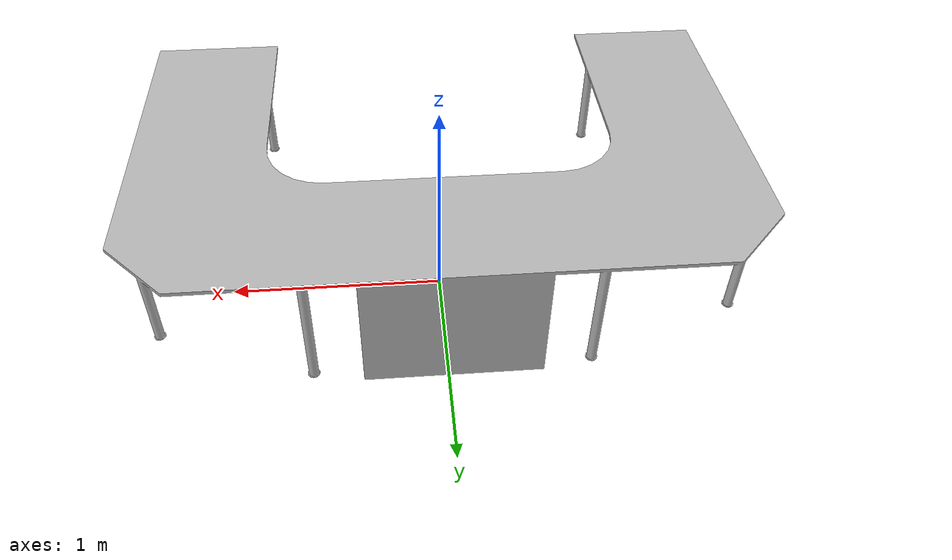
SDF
<?xml version='1.0'?>
<sdf version='1.6'>
  <model name='Assem_long'>
    <link name='Assem_long'>
      <pose frame=''>0 0 0 0 -0 0</pose>
      <inertial>
        <pose frame=''>-0.055611 0.058011 0.24973 0 -0 0</pose>
        <mass>191.42</mass>
        <inertia>
          <ixx>34.827</ixx>
          <ixy>8.7757e-16</ixy>
          <ixz>-2.5068e-15</ixz>
          <iyy>39.739</iyy>
          <iyz>0.24573</iyz>
          <izz>23.642</izz>
        </inertia>
      </inertial>
      <collision name='Assem_long_collision'>
        <pose frame=''>0 0 0 0 -0 0</pose>
        <geometry>
          <mesh>
            <scale>1 1 1</scale>
            <uri>model://Assem_long/meshes/Assem_long.STL</uri>
          </mesh>
        </geometry>
      </collision>
      <visual name='Assem_long_visual'>
        <pose frame=''>0 0 0 0 -0 0</pose>
        <geometry>
          <mesh>
            <scale>1 1 1</scale>
            <uri>model://Assem_long/meshes/Assem_long.STL</uri>
          </mesh>
        </geometry>
      </visual>
    </link>
  </model>
</sdf>
